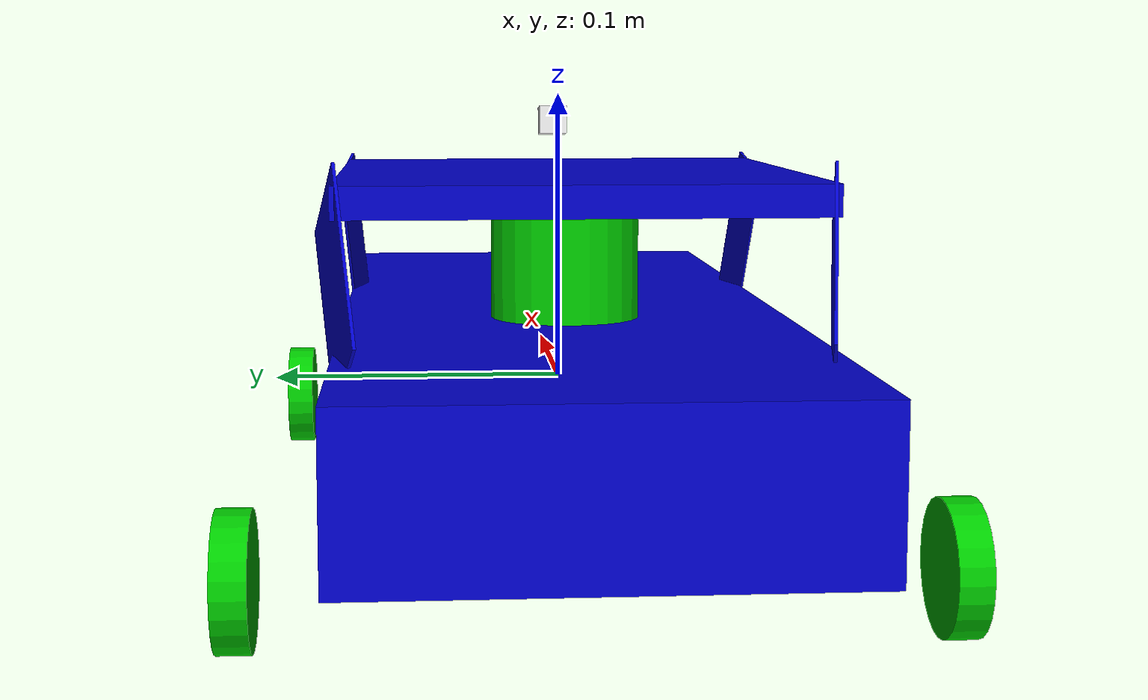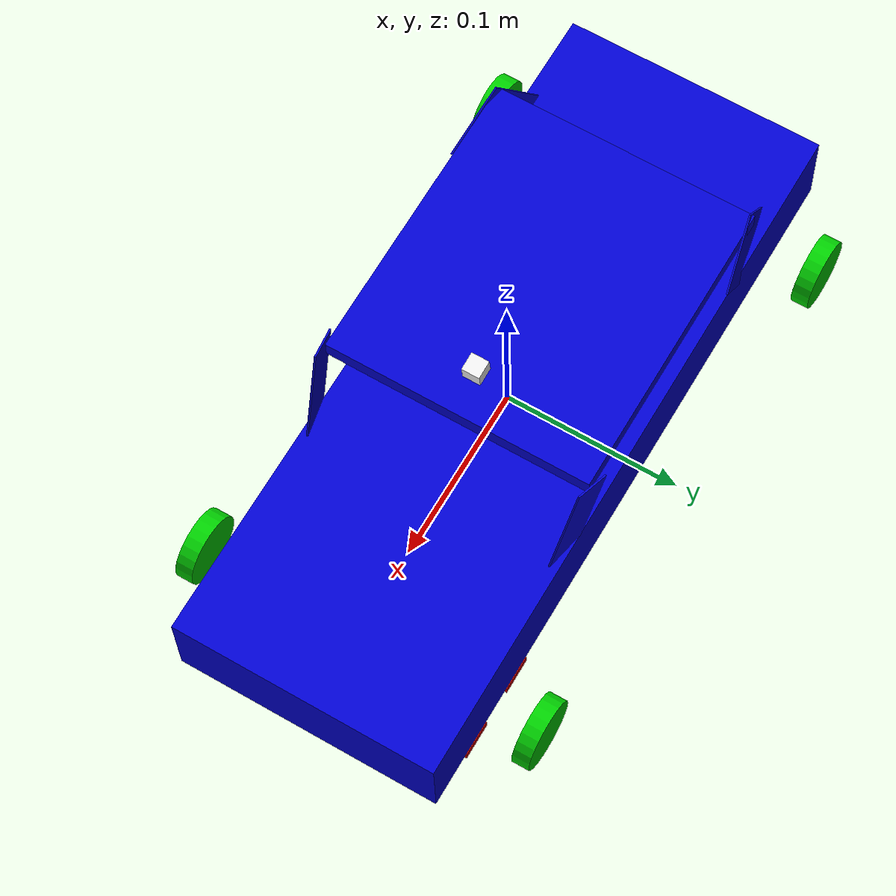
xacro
<?xml version="1.0"?>
<robot
	xmlns:xacro="http://www.ros.org/wiki/xacro"
	name="autonomos">

<xacro:include filename="$(find autonomos_description)/urdf/autonomos.gazebo"/>

  <!-- Include materials -->
  <material name="Black">
    <color rgba="0.0 0.0 0.0 1.0"/>
  </material>
  <material name="Blue">
    <color rgba="0.0 0.0 0.8 1.0"/>
  </material>
  <material name="Green">
    <color rgba="0.0 0.8 0.0 1.0"/>
  </material>
  <material name="Red">
    <color rgba="0.8 0.0 0.0 1.0"/>
  </material>
  <material name="White">
    <color rgba="1.0 1.0 1.0 1.0"/>
  </material>

  <!-- properties -->
  <xacro:property name="ancho" value="0.01" />
  <xacro:property name="radio" value="0.020" />
  <xacro:property name="mu" value="1" />

  <xacro:macro name="inertial_matrix" params="mass">
      <inertial>
        <mass value="${mass}"/>
        <inertia ixx="0.0010000" ixy="0.000000" ixz="0.000000" iyy="0.0010000" iyz="0.000000" izz="0.0010000" />
      </inertial>
   </xacro:macro>

  <xacro:macro name="collision_rueda" params="length radius">
    <collision>
        <geometry>
	     <cylinder length="${length}" radius="${radius}"/>
	</geometry>
    </collision>
  </xacro:macro>

  <xacro:macro name="visual_rueda" params="length radius">
    <visual>
        <geometry>
	     <cylinder length="${ancho}" radius="${radio}"/>
	</geometry>
        <material name="Green"/>
    </visual>
  </xacro:macro>

  <xacro:macro name="friccion_rueda" params="mu">
      <surface>
        <bounce restitution_coefficient=".2" />
        <friction>
          <ode mu="${mu}" mu2="${mu}" fdir1="1 0 0" slip1="0" slip2="0" />
        </friction>
        <contact>
          <ode/>
        </contact>
      </surface>
  </xacro:macro>

  <xacro:macro name="transmission_block" params="joint_name">
   <transmission name="${joint_name}_tran">
     <type>transmission_interface/SimpleTransmission</type>
     <joint name="${joint_name}">
       <hardwareInterface>hardware_interface/EffortJointInterface</hardwareInterface>
     </joint>
     <actuator name="${joint_name}_motor">
      <hardwareInterface>hardware_interface/EffortJointInterface</hardwareInterface>
      <mechanicalReduction>1</mechanicalReduction>
     </actuator>
    </transmission>
  </xacro:macro>

<!-- VelocityJointInterface -->

  <link name="base_link">
      <!-- body -->
      <inertial>
        <origin xyz="0.002623 0.000000 0.022951"/>
        <mass value="0.61"/>
        <inertia ixx="0.611350" ixy="0.000000" ixz="0.000160" iyy="0.611606" iyz="0.000000" izz="0.610256"/>
      </inertial>
      <collision name="base_link_geom">
        <geometry>
          <box size="0.400000 0.150000 0.0500000"/>
        </geometry>
      </collision>
      <visual name="base_link_visual">
        <geometry>
          <box size="0.400000 0.150000 0.0500000"/>
        </geometry>
        <material name="Blue"/>
      </visual>

      <!-- pilar_front_right -->
      <collision>
	<origin rpy="0.000000 -0.385398 0.200000" xyz="0.060000 -0.074 0.045"/>
        <geometry>
          <box size="0.022 0.001 0.06"/>
        </geometry>
      </collision>
      <visual>
	<origin rpy="0.000000 -0.385398 0.2000000" xyz="0.060000 -0.075 0.045"/>
        <geometry>
          <box size="0.022 0.001 0.06"/>
        </geometry>
        <material name="Blue"/>
      </visual>
      <!-- pilar_front_left -->
      <collision>
	<origin rpy="0.000000 -0.385398 0.200000" xyz="0.060000 0.074 0.045"/>
        <geometry>
          <box size="0.022 0.001 0.06"/>
        </geometry>
      </collision>
      <visual>
	<origin rpy="0.000000 -0.385398 -0.2000000" xyz="0.060000 0.074 0.045"/>
        <geometry>
          <box size="0.022 0.001 0.06"/>
        </geometry>
        <material name="Blue"/>
      </visual>
      <!-- pilar_back_left -->
      <collision>
	<origin rpy="0.000000 0.585398 0.2000000" xyz="-0.115 0.074 0.045"/>
        <geometry>
          <box size="0.042 0.001 0.06"/>
        </geometry>
      </collision>
      <visual>
	<origin rpy="0.000000 0.585398 0.2000000" xyz="-0.115 0.074 0.045"/>
        <geometry>
          <box size="0.042 0.001 0.06"/>
        </geometry>
        <material name="Blue"/>
      </visual>
      <!-- pilar_back_right -->
      <collision>
	<origin rpy="0.000000 0.585398 -0.2000000" xyz="-0.115 -0.074 0.045"/>
        <geometry>
          <box size="0.042 0.001 0.06"/>
        </geometry>
      </collision>
      <visual>
	<origin rpy="0.000000 0.585398 -0.2000000" xyz="-0.115 -0.074 0.045"/>
        <geometry>
          <box size="0.042 0.001 0.06"/>
        </geometry>
        <material name="Blue"/>
      </visual>
      <!-- ceiling -->
      <collision>
	<origin rpy="1.57 0 0" xyz="-0.035 0.0 0.07"/>
        <geometry>
          <box size="0.17 0.01 0.15"/>
        </geometry>
      </collision>
      <visual>
	<origin rpy="1.57 0 0" xyz="-0.035 0.0 0.07"/>
        <geometry>
          <box size="0.17 0.01 0.15"/>
        </geometry>
        <material name="Blue"/>
      </visual>
  </link>

  <!-- back left wheel -->
  <link name="back_left_wheel_link">
    <xacro:visual_rueda length="${ancho}" radius="${radio}"/>
    <xacro:collision_rueda length="${ancho}" radius="${radio}"/>
    <xacro:inertial_matrix mass="0.01"/>
    <xacro:friccion_rueda mu="${mu}" />
  </link>

  <joint name="back_left_wheel_joint" type="revolute">
    <parent link="base_link"/>
    <child link="back_left_wheel_link"/>
    <origin rpy="1.57 0 0" xyz="-0.160000 0.100000 -0.030000"/>
    <axis xyz="0 0 1"/>
    <limit effort="300" lower="-10000000000000000" upper="10000000000000000" velocity="1"/>
    <!-- Al utilizar esto en gazebo, los joints no funcionan -->
  </joint>

  <!-- back right wheel -->
  <link name="back_right_wheel_link">
     <xacro:visual_rueda length="${ancho}" radius="${radio}"/>
     <xacro:collision_rueda length="${ancho}" radius="${radio}"/>
     <xacro:inertial_matrix mass="0.01"/>
     <xacro:friccion_rueda mu="${mu}" />
  </link>

  <joint name="back_right_wheel_joint" type="revolute">
    <parent link="base_link"/>
    <child link="back_right_wheel_link"/>
    <origin rpy="1.57 0 0" xyz="-0.160000 -0.100000 -0.0300000"/>
    <axis xyz="0 0 1"/>
    <limit effort="300" lower="-10000000000000000" upper="10000000000000000" velocity="1"/>
  </joint>

  <!-- Front link of Ackermann -->
  <!-- Joins to the car body -->
  <link name="front_link">
    <!-- link_geom_front -->
    <collision>
        <geometry>
          <box size="0.020000 0.150000 0.005000"/>
        </geometry>
    </collision>
    <visual>
        <geometry>
          <box size="0.020000 0.150000 0.005000"/>
        </geometry>
        <material name="Red"/>
    </visual>
    <xacro:inertial_matrix mass="0.001"/>
  </link>
  <joint name="front_joint" type="fixed">
    	<parent link="base_link"/>
    	<child link="front_link"/>
    	<origin xyz="0.160000 0.000000 -0.0300000 "/>
  </joint>

  <!-- front left bar -->
  <link name="front_left_bar_link">
      <xacro:inertial_matrix mass="0.001"/>
      <collision>
        <geometry>
          <box size="0.04 0.02 0.005"/>
        </geometry>
      </collision>
      <visual>
        <geometry>
          <box size="0.04 0.02 0.005"/>
        </geometry>
        <material name="Red"/>
      </visual>
  </link>

  <joint name="front_left_bar_joint" type="revolute">
    <parent link="front_link"/>
    <child link="front_left_bar_link"/>
    <origin rpy="0 0 0" xyz="-0.0200 0.060000 0.000000"/>
    <axis xyz="0 0 1"/>
    <limit effort="300" lower="-0.5" upper="0.5" velocity="1"/>
  </joint>

  <!-- front left wheel -->
  <link name="front_left_wheel_link">
    <xacro:visual_rueda length="${ancho}" radius="${radio}"/>
    <xacro:collision_rueda length="${ancho}" radius="${radio}"/>
    <xacro:inertial_matrix mass="0.01"/>
    <xacro:friccion_rueda mu="${mu}" />
  </link>

  <joint name="front_left_wheel_joint" type="revolute">
    <parent link="front_left_bar_link"/>
    <child link="front_left_wheel_link"/>
    <origin rpy="1.57 0 0" xyz="0.000000 0.040000 0.000000"/>
    <axis xyz="0 0 1"/>
    <limit effort="300" lower="-10000000000000000" upper="10000000000000000" velocity="1"/>
  </joint>

  <!-- front right bar -->
  <link name="front_right_bar_link">
      <xacro:inertial_matrix mass="0.001"/>
      <collision>
        <geometry>
          <box size="0.04 0.02 0.005"/>
        </geometry>
      </collision>
      <visual>
        <geometry>
          <box size="0.04 0.02 0.005"/>
        </geometry>
        <material name="Red"/>
      </visual>
  </link>

  <joint name="front_right_bar_joint" type="revolute">
    <parent link="front_link"/>
    <child link="front_right_bar_link"/>
    <origin rpy="0 0 0" xyz="-0.020000 -0.060000 0.000000"/>
    <axis xyz="0 0 1"/>
    <limit effort="300" lower="-0.5" upper="0.5" velocity="1"/>
  </joint>

  <!-- front right wheel -->
  <link name="front_right_wheel_link">
    <xacro:visual_rueda length="${ancho}" radius="${radio}"/>
    <xacro:collision_rueda length="${ancho}" radius="${radio}"/>
    <xacro:inertial_matrix mass="0.01"/>
    <xacro:friccion_rueda mu="${mu}" />
  </link>

  <joint name="front_right_wheel_joint" type="revolute">
    <parent link="front_right_bar_link"/>
    <child link="front_right_wheel_link"/>
    <origin rpy="1.57 0 0" xyz="0.0000 -0.04000 0.000000"/>
    <axis xyz="0 0 1"/>
    <limit effort="300" lower="-10000000000000000" upper="10000000000000000" velocity="1"/>
  </joint>

  <!-- steer link -->
  <link name="steer_link">
      <xacro:inertial_matrix mass="0.001"/>
      <collision>
        <geometry>
          <box size="0.04 0.02 0.005"/>
        </geometry>
      </collision>
      <visual>
        <geometry>
          <box size="0.04 0.02 0.005"/>
        </geometry>
        <material name="Red"/>
      </visual>
  </link>

  <joint name="steer_joint" type="revolute">
    <parent link="front_link"/>
    <child link="steer_link"/>
    <origin rpy="0 0 0" xyz="-0.020000 0.000000 0.000000"/>
    <axis xyz="0 0 1"/>
    <limit effort="300" lower="-0.5" upper="0.5" velocity="1"/>
  </joint>

  <!-- ackerman link -->
  <link name="ackermann_bar_link">
      <xacro:inertial_matrix mass="0.001"/>
      <collision>
        <geometry>
          <box size="0.020000 0.150000 0.0050000"/>
        </geometry>
      </collision>
      <visual>
        <geometry>
          <box size="0.020000 0.150000 0.0050000"/>
        </geometry>
        <material name="Red"/>
      </visual>
  </link>

  <joint name="ackermann_joint" type="revolute">
    <parent link="steer_link"/>
    <child link="ackermann_bar_link"/>
    <origin rpy="0 0 0" xyz="-0.020 0.000000 0.000000"/>
    <axis xyz="0 0 1"/>
    <limit effort="300" lower="-0.5" upper="0.5" velocity="1"/>
  </joint>

  <!-- laser link -->
  <link name="laser_link">
    <inertial>
      <mass value="0.1197"/>
      <inertia ixx="0.00000429247" ixy="0.00000000000" ixz="0.00000002565" iyy="0.00000008027" iyz="0.00000000000" izz="0.00000427339"/>
    </inertial>
    <collision>
        <geometry>
          <box size="0.05 0.05 0.035"/>
        </geometry>
    </collision>
    <visual>
        <geometry>
          <cylinder radius="0.025" length="0.04"/>
        </geometry>
        <material name="Green"/>
    </visual>
  </link>

  <joint name="laser_joint" type="fixed">
    <origin rpy="0 0 0" xyz="-0.03 0 .04"/>
    <parent link="base_link"/>
    <child link="laser_link"/>
  </joint>

  <link name="camera_link">
      <xacro:inertial_matrix mass="0.001"/>
      <collision name="collision">
        <geometry>
          <box size="0.010000 0.010000 0.010000"/>
        </geometry>
      </collision>
      <visual name="visual">
        <geometry>
          <box size="0.010000 0.010000 0.010000"/>
        </geometry>
      </visual>
  </link>

  <joint name="camera_joint" type="fixed">
    <origin rpy="0 0.1 0" xyz="0.03 0.0 0.09"/>
    <parent link="base_link"/>
    <child link="camera_link"/>
    <axis xyz="0 0 1"/>
  </joint>

</robot>
